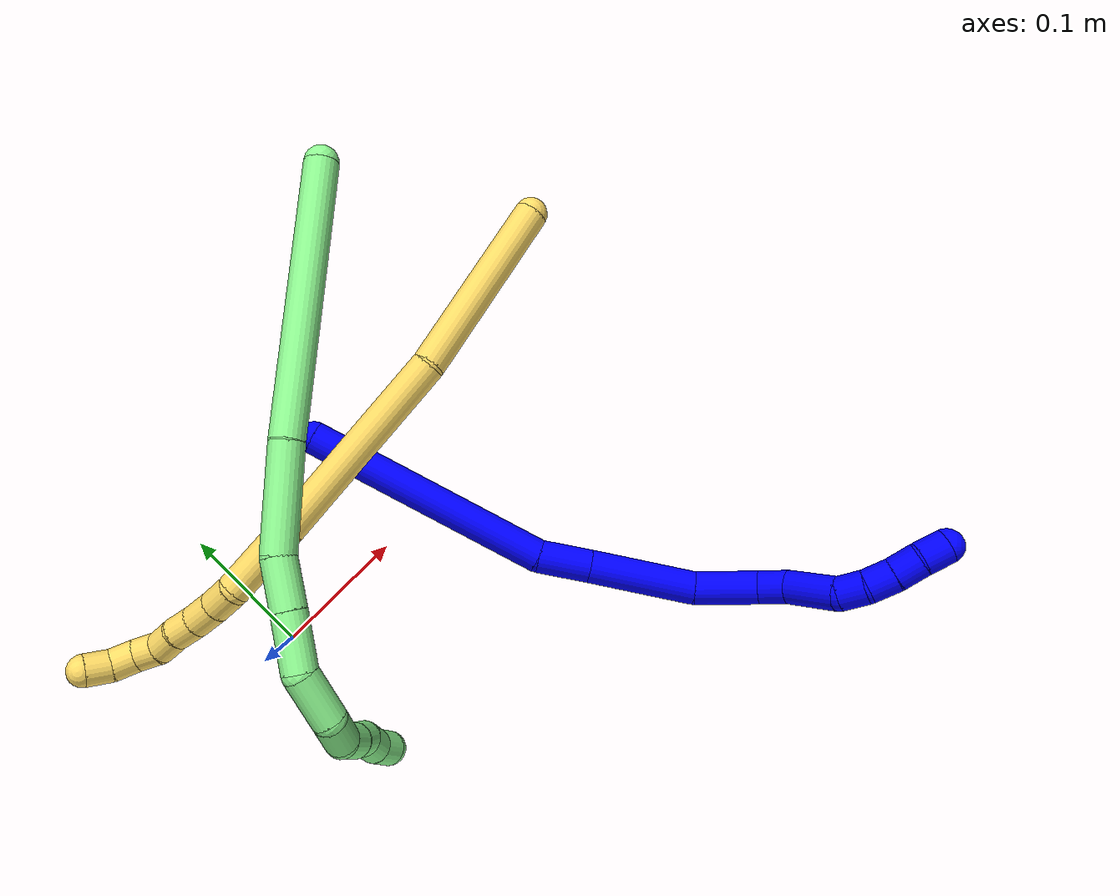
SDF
<sdf version="1.7">
 <world name="default">
  <model name="1">
   <static>0</static>
   <link name="1">
    <collision name="collision-cylinder-e_1_1_4">
     <pose>0.022887 -0.053199 0.075446 0.614159 0.243023 0.077408</pose>
     <geometry><cylinder><radius>0.0125</radius><length>0.190223</length></cylinder></geometry>
     <surface>
      <friction><ode><mu>1.16</mu><mu2>1.16</mu2><slip1>0</slip1><slip2>0</slip2></ode></friction>
      <contact><ode><kp>1e+06</kp><kd>1</kd><max_vel>0</max_vel><min_depth>0.001</min_depth></ode></contact>
     </surface>
    </collision>
    <visual name="visual-cylinder-e_1_1_4">
     <pose>0.022887 -0.053199 0.075446 0.614159 0.243023 0.077408</pose>
     <geometry><cylinder><radius>0.0125</radius><length>0.190223</length></cylinder></geometry>
     <material><ambient>0 0 1 1</ambient></material>
    </visual>
    <collision name="collision-cylinder-e_2_4_5">
     <pose>0.052797 -0.112438 0.168235 0.335085 0.365246 0.062449</pose>
     <geometry><cylinder><radius>0.0125</radius><length>0.03932</length></cylinder></geometry>
     <surface>
      <friction><ode><mu>1.16</mu><mu2>1.16</mu2><slip1>0</slip1><slip2>0</slip2></ode></friction>
      <contact><ode><kp>1e+06</kp><kd>1</kd><max_vel>0</max_vel><min_depth>0.001</min_depth></ode></contact>
     </surface>
    </collision>
    <visual name="visual-cylinder-e_2_4_5">
     <pose>0.052797 -0.112438 0.168235 0.335085 0.365246 0.062449</pose>
     <geometry><cylinder><radius>0.0125</radius><length>0.03932</length></cylinder></geometry>
     <material><ambient>0 0 1 1</ambient></material>
    </visual>
    <collision name="collision-cylinder-e_3_5_6">
     <pose>0.073649 -0.131169 0.220781 0.346038 0.353983 0.062498</pose>
     <geometry><cylinder><radius>0.0125</radius><length>0.079793</length></cylinder></geometry>
     <surface>
      <friction><ode><mu>1.16</mu><mu2>1.16</mu2><slip1>0</slip1><slip2>0</slip2></ode></friction>
      <contact><ode><kp>1e+06</kp><kd>1</kd><max_vel>0</max_vel><min_depth>0.001</min_depth></ode></contact>
     </surface>
    </collision>
    <visual name="visual-cylinder-e_3_5_6">
     <pose>0.073649 -0.131169 0.220781 0.346038 0.353983 0.062498</pose>
     <geometry><cylinder><radius>0.0125</radius><length>0.079793</length></cylinder></geometry>
     <material><ambient>0 0 1 1</ambient></material>
    </visual>
    <collision name="collision-cylinder-e_4_6_7">
     <pose>0.094185 -0.14523 0.278897 0.059623 0.284286 0.008535</pose>
     <geometry><cylinder><radius>0.0125</radius><length>0.047824</length></cylinder></geometry>
     <surface>
      <friction><ode><mu>1.16</mu><mu2>1.16</mu2><slip1>0</slip1><slip2>0</slip2></ode></friction>
      <contact><ode><kp>1e+06</kp><kd>1</kd><max_vel>0</max_vel><min_depth>0.001</min_depth></ode></contact>
     </surface>
    </collision>
    <visual name="visual-cylinder-e_4_6_7">
     <pose>0.094185 -0.14523 0.278897 0.059623 0.284286 0.008535</pose>
     <geometry><cylinder><radius>0.0125</radius><length>0.047824</length></cylinder></geometry>
     <material><ambient>0 0 1 1</ambient></material>
    </visual>
    <collision name="collision-cylinder-e_5_7_8">
     <pose>0.100456 -0.145637 0.312975 -0.085765 -0.038829 0.001666</pose>
     <geometry><cylinder><radius>0.0125</radius><length>0.02243</length></cylinder></geometry>
     <surface>
      <friction><ode><mu>1.16</mu><mu2>1.16</mu2><slip1>0</slip1><slip2>0</slip2></ode></friction>
      <contact><ode><kp>1e+06</kp><kd>1</kd><max_vel>0</max_vel><min_depth>0.001</min_depth></ode></contact>
     </surface>
    </collision>
    <visual name="visual-cylinder-e_5_7_8">
     <pose>0.100456 -0.145637 0.312975 -0.085765 -0.038829 0.001666</pose>
     <geometry><cylinder><radius>0.0125</radius><length>0.02243</length></cylinder></geometry>
     <material><ambient>0 0 1 1</ambient></material>
    </visual>
    <collision name="collision-cylinder-e_6_8_9">
     <pose>0.093821 -0.143916 0.342861 -0.04064 -0.319552 0.00655</pose>
     <geometry><cylinder><radius>0.0125</radius><length>0.03947</length></cylinder></geometry>
     <surface>
      <friction><ode><mu>1.16</mu><mu2>1.16</mu2><slip1>0</slip1><slip2>0</slip2></ode></friction>
      <contact><ode><kp>1e+06</kp><kd>1</kd><max_vel>0</max_vel><min_depth>0.001</min_depth></ode></contact>
     </surface>
    </collision>
    <visual name="visual-cylinder-e_6_8_9">
     <pose>0.093821 -0.143916 0.342861 -0.04064 -0.319552 0.00655</pose>
     <geometry><cylinder><radius>0.0125</radius><length>0.03947</length></cylinder></geometry>
     <material><ambient>0 0 1 1</ambient></material>
    </visual>
    <collision name="collision-cylinder-e_7_9_10">
     <pose>0.088557 -0.140317 0.371202 -0.286884 0.092935 -0.013432</pose>
     <geometry><cylinder><radius>0.0125</radius><length>0.020148</length></cylinder></geometry>
     <surface>
      <friction><ode><mu>1.16</mu><mu2>1.16</mu2><slip1>0</slip1><slip2>0</slip2></ode></friction>
      <contact><ode><kp>1e+06</kp><kd>1</kd><max_vel>0</max_vel><min_depth>0.001</min_depth></ode></contact>
     </surface>
    </collision>
    <visual name="visual-cylinder-e_7_9_10">
     <pose>0.088557 -0.140317 0.371202 -0.286884 0.092935 -0.013432</pose>
     <geometry><cylinder><radius>0.0125</radius><length>0.020148</length></cylinder></geometry>
     <material><ambient>0 0 1 1</ambient></material>
    </visual>
    <collision name="collision-cylinder-e_8_10_11">
     <pose>0.092647 -0.133839 0.389749 -0.387152 0.316293 -0.062505</pose>
     <geometry><cylinder><radius>0.0125</radius><length>0.020286</length></cylinder></geometry>
     <surface>
      <friction><ode><mu>1.16</mu><mu2>1.16</mu2><slip1>0</slip1><slip2>0</slip2></ode></friction>
      <contact><ode><kp>1e+06</kp><kd>1</kd><max_vel>0</max_vel><min_depth>0.001</min_depth></ode></contact>
     </surface>
    </collision>
    <visual name="visual-cylinder-e_8_10_11">
     <pose>0.092647 -0.133839 0.389749 -0.387152 0.316293 -0.062505</pose>
     <geometry><cylinder><radius>0.0125</radius><length>0.020286</length></cylinder></geometry>
     <material><ambient>0 0 1 1</ambient></material>
    </visual>
    <collision name="collision-cylinder-e_9_11_12">
     <pose>0.099003 -0.125431 0.407019 -0.519155 0.321632 -0.086106</pose>
     <geometry><cylinder><radius>0.0125</radius><length>0.020258</length></cylinder></geometry>
     <surface>
      <friction><ode><mu>1.16</mu><mu2>1.16</mu2><slip1>0</slip1><slip2>0</slip2></ode></friction>
      <contact><ode><kp>1e+06</kp><kd>1</kd><max_vel>0</max_vel><min_depth>0.001</min_depth></ode></contact>
     </surface>
    </collision>
    <visual name="visual-cylinder-e_9_11_12">
     <pose>0.099003 -0.125431 0.407019 -0.519155 0.321632 -0.086106</pose>
     <geometry><cylinder><radius>0.0125</radius><length>0.020258</length></cylinder></geometry>
     <material><ambient>0 0 1 1</ambient></material>
    </visual>
    <collision name="collision-cylinder-e_10_12_2">
     <pose>0.106707 -0.117044 0.423676 -0.410609 0.46085 -0.097624</pose>
     <geometry><cylinder><radius>0.0125</radius><length>0.020247</length></cylinder></geometry>
     <surface>
      <friction><ode><mu>1.16</mu><mu2>1.16</mu2><slip1>0</slip1><slip2>0</slip2></ode></friction>
      <contact><ode><kp>1e+06</kp><kd>1</kd><max_vel>0</max_vel><min_depth>0.001</min_depth></ode></contact>
     </surface>
    </collision>
    <visual name="visual-cylinder-e_10_12_2">
     <pose>0.106707 -0.117044 0.423676 -0.410609 0.46085 -0.097624</pose>
     <geometry><cylinder><radius>0.0125</radius><length>0.020247</length></cylinder></geometry>
     <material><ambient>0 0 1 1</ambient></material>
    </visual>
    <collision name="collision-sphere-2">
     <pose>0.111209 -0.113425 0.43199 0 -0 0</pose>
     <geometry><sphere><radius>0.0125</radius></sphere></geometry>
     <surface>
      <friction><ode><mu>1.16</mu><mu2>1.16</mu2><slip1>0</slip1><slip2>0</slip2></ode></friction>
      <contact><ode><kp>1e+06</kp><kd>1</kd><max_vel>0</max_vel><min_depth>0.001</min_depth></ode></contact>
     </surface>
    </collision>
    <visual name="visual-sphere-2">
     <pose>0.111209 -0.113425 0.43199 0 -0 0</pose>
     <geometry><sphere><radius>0.0125</radius></sphere></geometry>
     <material><ambient>0 0 1 1</ambient></material>
    </visual>
    <collision name="collision-sphere-12">
     <pose>0.102205 -0.120664 0.415362 0 -0 0</pose>
     <geometry><sphere><radius>0.0125</radius></sphere></geometry>
     <surface>
      <friction><ode><mu>1.16</mu><mu2>1.16</mu2><slip1>0</slip1><slip2>0</slip2></ode></friction>
      <contact><ode><kp>1e+06</kp><kd>1</kd><max_vel>0</max_vel><min_depth>0.001</min_depth></ode></contact>
     </surface>
    </collision>
    <visual name="visual-sphere-12">
     <pose>0.102205 -0.120664 0.415362 0 -0 0</pose>
     <geometry><sphere><radius>0.0125</radius></sphere></geometry>
     <material><ambient>0 0 1 1</ambient></material>
    </visual>
    <collision name="collision-sphere-11">
     <pose>0.095802 -0.130199 0.398676 0 -0 0</pose>
     <geometry><sphere><radius>0.0125</radius></sphere></geometry>
     <surface>
      <friction><ode><mu>1.16</mu><mu2>1.16</mu2><slip1>0</slip1><slip2>0</slip2></ode></friction>
      <contact><ode><kp>1e+06</kp><kd>1</kd><max_vel>0</max_vel><min_depth>0.001</min_depth></ode></contact>
     </surface>
    </collision>
    <visual name="visual-sphere-11">
     <pose>0.095802 -0.130199 0.398676 0 -0 0</pose>
     <geometry><sphere><radius>0.0125</radius></sphere></geometry>
     <material><ambient>0 0 1 1</ambient></material>
    </visual>
    <collision name="collision-sphere-10">
     <pose>0.089492 -0.137478 0.380823 0 -0 0</pose>
     <geometry><sphere><radius>0.0125</radius></sphere></geometry>
     <surface>
      <friction><ode><mu>1.16</mu><mu2>1.16</mu2><slip1>0</slip1><slip2>0</slip2></ode></friction>
      <contact><ode><kp>1e+06</kp><kd>1</kd><max_vel>0</max_vel><min_depth>0.001</min_depth></ode></contact>
     </surface>
    </collision>
    <visual name="visual-sphere-10">
     <pose>0.089492 -0.137478 0.380823 0 -0 0</pose>
     <geometry><sphere><radius>0.0125</radius></sphere></geometry>
     <material><ambient>0 0 1 1</ambient></material>
    </visual>
    <collision name="collision-sphere-9">
     <pose>0.087622 -0.143155 0.361581 0 -0 0</pose>
     <geometry><sphere><radius>0.0125</radius></sphere></geometry>
     <surface>
      <friction><ode><mu>1.16</mu><mu2>1.16</mu2><slip1>0</slip1><slip2>0</slip2></ode></friction>
      <contact><ode><kp>1e+06</kp><kd>1</kd><max_vel>0</max_vel><min_depth>0.001</min_depth></ode></contact>
     </surface>
    </collision>
    <visual name="visual-sphere-9">
     <pose>0.087622 -0.143155 0.361581 0 -0 0</pose>
     <geometry><sphere><radius>0.0125</radius></sphere></geometry>
     <material><ambient>0 0 1 1</ambient></material>
    </visual>
    <collision name="collision-sphere-4">
     <pose>0.045775 -0.106399 0.150893 0 -0 0</pose>
     <geometry><sphere><radius>0.0125</radius></sphere></geometry>
     <surface>
      <friction><ode><mu>1.16</mu><mu2>1.16</mu2><slip1>0</slip1><slip2>0</slip2></ode></friction>
      <contact><ode><kp>1e+06</kp><kd>1</kd><max_vel>0</max_vel><min_depth>0.001</min_depth></ode></contact>
     </surface>
    </collision>
    <visual name="visual-sphere-4">
     <pose>0.045775 -0.106399 0.150893 0 -0 0</pose>
     <geometry><sphere><radius>0.0125</radius></sphere></geometry>
     <material><ambient>0 0 1 1</ambient></material>
    </visual>
    <collision name="collision-sphere-1">
     <geometry><sphere><radius>0.0125</radius></sphere></geometry>
     <surface>
      <friction><ode><mu>1.16</mu><mu2>1.16</mu2><slip1>0</slip1><slip2>0</slip2></ode></friction>
      <contact><ode><kp>1e+06</kp><kd>1</kd><max_vel>0</max_vel><min_depth>0.001</min_depth></ode></contact>
     </surface>
    </collision>
    <visual name="visual-sphere-1">
     <geometry><sphere><radius>0.0125</radius></sphere></geometry>
     <material><ambient>0 0 1 1</ambient></material>
    </visual>
    <collision name="collision-sphere-8">
     <pose>0.100021 -0.144677 0.32414 0 -0 0</pose>
     <geometry><sphere><radius>0.0125</radius></sphere></geometry>
     <surface>
      <friction><ode><mu>1.16</mu><mu2>1.16</mu2><slip1>0</slip1><slip2>0</slip2></ode></friction>
      <contact><ode><kp>1e+06</kp><kd>1</kd><max_vel>0</max_vel><min_depth>0.001</min_depth></ode></contact>
     </surface>
    </collision>
    <visual name="visual-sphere-8">
     <pose>0.100021 -0.144677 0.32414 0 -0 0</pose>
     <geometry><sphere><radius>0.0125</radius></sphere></geometry>
     <material><ambient>0 0 1 1</ambient></material>
    </visual>
    <collision name="collision-sphere-5">
     <pose>0.059819 -0.118476 0.185577 0 -0 0</pose>
     <geometry><sphere><radius>0.0125</radius></sphere></geometry>
     <surface>
      <friction><ode><mu>1.16</mu><mu2>1.16</mu2><slip1>0</slip1><slip2>0</slip2></ode></friction>
      <contact><ode><kp>1e+06</kp><kd>1</kd><max_vel>0</max_vel><min_depth>0.001</min_depth></ode></contact>
     </surface>
    </collision>
    <visual name="visual-sphere-5">
     <pose>0.059819 -0.118476 0.185577 0 -0 0</pose>
     <geometry><sphere><radius>0.0125</radius></sphere></geometry>
     <material><ambient>0 0 1 1</ambient></material>
    </visual>
    <collision name="collision-sphere-6">
     <pose>0.087478 -0.143862 0.255986 0 -0 0</pose>
     <geometry><sphere><radius>0.0125</radius></sphere></geometry>
     <surface>
      <friction><ode><mu>1.16</mu><mu2>1.16</mu2><slip1>0</slip1><slip2>0</slip2></ode></friction>
      <contact><ode><kp>1e+06</kp><kd>1</kd><max_vel>0</max_vel><min_depth>0.001</min_depth></ode></contact>
     </surface>
    </collision>
    <visual name="visual-sphere-6">
     <pose>0.087478 -0.143862 0.255986 0 -0 0</pose>
     <geometry><sphere><radius>0.0125</radius></sphere></geometry>
     <material><ambient>0 0 1 1</ambient></material>
    </visual>
    <collision name="collision-sphere-7">
     <pose>0.100892 -0.146597 0.301809 0 -0 0</pose>
     <geometry><sphere><radius>0.0125</radius></sphere></geometry>
     <surface>
      <friction><ode><mu>1.16</mu><mu2>1.16</mu2><slip1>0</slip1><slip2>0</slip2></ode></friction>
      <contact><ode><kp>1e+06</kp><kd>1</kd><max_vel>0</max_vel><min_depth>0.001</min_depth></ode></contact>
     </surface>
    </collision>
    <visual name="visual-sphere-7">
     <pose>0.100892 -0.146597 0.301809 0 -0 0</pose>
     <geometry><sphere><radius>0.0125</radius></sphere></geometry>
     <material><ambient>0 0 1 1</ambient></material>
    </visual>
    <inertial>
     <pose>0.061194 -0.102705 0.209367 0 -0 0</pose>
     <mass>0.5</mass>
     <inertia>
      <ixx>0.00069</ixx>
      <ixy>0</ixy>
      <ixz>0</ixz>
      <iyy>0.000591</iyy>
      <iyz>0</iyz>
      <izz>0.000213</izz>
     </inertia>
    </inertial>
   </link>
   <pose>0.119695 0.096034 0.013007 0.530638 1.04086 -0.17504</pose>
  </model>
  <model name="5">
   <static>0</static>
   <link name="5">
    <collision name="collision-cylinder-e_1_1_4">
     <pose>-0.058911 0.038456 -0.009829 -1.82103 -0.97789 1.20134</pose>
     <geometry><cylinder><radius>0.0125</radius><length>0.14207</length></cylinder></geometry>
     <surface>
      <friction><ode><mu>1.16</mu><mu2>1.16</mu2><slip1>0</slip1><slip2>0</slip2></ode></friction>
      <contact><ode><kp>1e+06</kp><kd>1</kd><max_vel>0</max_vel><min_depth>0.001</min_depth></ode></contact>
     </surface>
    </collision>
    <visual name="visual-cylinder-e_1_1_4">
     <pose>-0.058911 0.038456 -0.009829 -1.82103 -0.97789 1.20134</pose>
     <geometry><cylinder><radius>0.0125</radius><length>0.14207</length></cylinder></geometry>
     <material><ambient>1 0.858824 0.4 1</ambient></material>
    </visual>
    <collision name="collision-cylinder-e_2_4_5">
     <pose>-0.187436 0.109822 -0.01701 -1.4905 -1.12795 1.05663</pose>
     <geometry><cylinder><radius>0.0125</radius><length>0.154094</length></cylinder></geometry>
     <surface>
      <friction><ode><mu>1.16</mu><mu2>1.16</mu2><slip1>0</slip1><slip2>0</slip2></ode></friction>
      <contact><ode><kp>1e+06</kp><kd>1</kd><max_vel>0</max_vel><min_depth>0.001</min_depth></ode></contact>
     </surface>
    </collision>
    <visual name="visual-cylinder-e_2_4_5">
     <pose>-0.187436 0.109822 -0.01701 -1.4905 -1.12795 1.05663</pose>
     <geometry><cylinder><radius>0.0125</radius><length>0.154094</length></cylinder></geometry>
     <material><ambient>1 0.858824 0.4 1</ambient></material>
    </visual>
    <collision name="collision-cylinder-e_3_5_6">
     <pose>-0.284372 0.154466 -0.01057 -1.25823 -1.14677 0.878647</pose>
     <geometry><cylinder><radius>0.0125</radius><length>0.05995</length></cylinder></geometry>
     <surface>
      <friction><ode><mu>1.16</mu><mu2>1.16</mu2><slip1>0</slip1><slip2>0</slip2></ode></friction>
      <contact><ode><kp>1e+06</kp><kd>1</kd><max_vel>0</max_vel><min_depth>0.001</min_depth></ode></contact>
     </surface>
    </collision>
    <visual name="visual-cylinder-e_3_5_6">
     <pose>-0.284372 0.154466 -0.01057 -1.25823 -1.14677 0.878647</pose>
     <geometry><cylinder><radius>0.0125</radius><length>0.05995</length></cylinder></geometry>
     <material><ambient>1 0.858824 0.4 1</ambient></material>
    </visual>
    <collision name="collision-cylinder-e_4_6_7">
     <pose>-0.321082 0.168472 -0.001491 -0.405739 -1.02098 0.229372</pose>
     <geometry><cylinder><radius>0.0125</radius><length>0.022025</length></cylinder></geometry>
     <surface>
      <friction><ode><mu>1.16</mu><mu2>1.16</mu2><slip1>0</slip1><slip2>0</slip2></ode></friction>
      <contact><ode><kp>1e+06</kp><kd>1</kd><max_vel>0</max_vel><min_depth>0.001</min_depth></ode></contact>
     </surface>
    </collision>
    <visual name="visual-cylinder-e_4_6_7">
     <pose>-0.321082 0.168472 -0.001491 -0.405739 -1.02098 0.229372</pose>
     <geometry><cylinder><radius>0.0125</radius><length>0.022025</length></cylinder></geometry>
     <material><ambient>1 0.858824 0.4 1</ambient></material>
    </visual>
    <collision name="collision-cylinder-e_5_7_8">
     <pose>-0.340195 0.172522 0.008419 -0.36716 -1.09969 0.226617</pose>
     <geometry><cylinder><radius>0.0125</radius><length>0.021825</length></cylinder></geometry>
     <surface>
      <friction><ode><mu>1.16</mu><mu2>1.16</mu2><slip1>0</slip1><slip2>0</slip2></ode></friction>
      <contact><ode><kp>1e+06</kp><kd>1</kd><max_vel>0</max_vel><min_depth>0.001</min_depth></ode></contact>
     </surface>
    </collision>
    <visual name="visual-cylinder-e_5_7_8">
     <pose>-0.340195 0.172522 0.008419 -0.36716 -1.09969 0.226617</pose>
     <geometry><cylinder><radius>0.0125</radius><length>0.021825</length></cylinder></geometry>
     <material><ambient>1 0.858824 0.4 1</ambient></material>
    </visual>
    <collision name="collision-cylinder-e_6_8_9">
     <pose>-0.359198 0.175328 0.016665 -0.27654 -1.18527 0.186867</pose>
     <geometry><cylinder><radius>0.0125</radius><length>0.02003</length></cylinder></geometry>
     <surface>
      <friction><ode><mu>1.16</mu><mu2>1.16</mu2><slip1>0</slip1><slip2>0</slip2></ode></friction>
      <contact><ode><kp>1e+06</kp><kd>1</kd><max_vel>0</max_vel><min_depth>0.001</min_depth></ode></contact>
     </surface>
    </collision>
    <visual name="visual-cylinder-e_6_8_9">
     <pose>-0.359198 0.175328 0.016665 -0.27654 -1.18527 0.186867</pose>
     <geometry><cylinder><radius>0.0125</radius><length>0.02003</length></cylinder></geometry>
     <material><ambient>1 0.858824 0.4 1</ambient></material>
    </visual>
    <collision name="collision-cylinder-e_7_9_10">
     <pose>-0.377065 0.178304 0.02503 -0.389757 -1.03258 0.223158</pose>
     <geometry><cylinder><radius>0.0125</radius><length>0.02</length></cylinder></geometry>
     <surface>
      <friction><ode><mu>1.16</mu><mu2>1.16</mu2><slip1>0</slip1><slip2>0</slip2></ode></friction>
      <contact><ode><kp>1e+06</kp><kd>1</kd><max_vel>0</max_vel><min_depth>0.001</min_depth></ode></contact>
     </surface>
    </collision>
    <visual name="visual-cylinder-e_7_9_10">
     <pose>-0.377065 0.178304 0.02503 -0.389757 -1.03258 0.223158</pose>
     <geometry><cylinder><radius>0.0125</radius><length>0.02</length></cylinder></geometry>
     <material><ambient>1 0.858824 0.4 1</ambient></material>
    </visual>
    <collision name="collision-cylinder-e_8_10_11">
     <pose>-0.395131 0.179085 0.032742 0.374117 -1.24602 -0.270312</pose>
     <geometry><cylinder><radius>0.0125</radius><length>0.020004</length></cylinder></geometry>
     <surface>
      <friction><ode><mu>1.16</mu><mu2>1.16</mu2><slip1>0</slip1><slip2>0</slip2></ode></friction>
      <contact><ode><kp>1e+06</kp><kd>1</kd><max_vel>0</max_vel><min_depth>0.001</min_depth></ode></contact>
     </surface>
    </collision>
    <visual name="visual-cylinder-e_8_10_11">
     <pose>-0.395131 0.179085 0.032742 0.374117 -1.24602 -0.270312</pose>
     <geometry><cylinder><radius>0.0125</radius><length>0.020004</length></cylinder></geometry>
     <material><ambient>1 0.858824 0.4 1</ambient></material>
    </visual>
    <collision name="collision-cylinder-e_9_11_12">
     <pose>-0.414393 0.177582 0.033669 2.9783 -1.36217 -2.94035</pose>
     <geometry><cylinder><radius>0.0125</radius><length>0.020001</length></cylinder></geometry>
     <surface>
      <friction><ode><mu>1.16</mu><mu2>1.16</mu2><slip1>0</slip1><slip2>0</slip2></ode></friction>
      <contact><ode><kp>1e+06</kp><kd>1</kd><max_vel>0</max_vel><min_depth>0.001</min_depth></ode></contact>
     </surface>
    </collision>
    <visual name="visual-cylinder-e_9_11_12">
     <pose>-0.414393 0.177582 0.033669 2.9783 -1.36217 -2.94035</pose>
     <geometry><cylinder><radius>0.0125</radius><length>0.020001</length></cylinder></geometry>
     <material><ambient>1 0.858824 0.4 1</ambient></material>
    </visual>
    <collision name="collision-cylinder-e_10_12_2">
     <pose>-0.432935 0.174888 0.027414 2.63124 -1.06711 -2.30988</pose>
     <geometry><cylinder><radius>0.0125</radius><length>0.02</length></cylinder></geometry>
     <surface>
      <friction><ode><mu>1.16</mu><mu2>1.16</mu2><slip1>0</slip1><slip2>0</slip2></ode></friction>
      <contact><ode><kp>1e+06</kp><kd>1</kd><max_vel>0</max_vel><min_depth>0.001</min_depth></ode></contact>
     </surface>
    </collision>
    <visual name="visual-cylinder-e_10_12_2">
     <pose>-0.432935 0.174888 0.027414 2.63124 -1.06711 -2.30988</pose>
     <geometry><cylinder><radius>0.0125</radius><length>0.02</length></cylinder></geometry>
     <material><ambient>1 0.858824 0.4 1</ambient></material>
    </visual>
    <collision name="collision-sphere-2">
     <pose>-0.441693 0.17253 0.023203 0 -0 0</pose>
     <geometry><sphere><radius>0.0125</radius></sphere></geometry>
     <surface>
      <friction><ode><mu>1.16</mu><mu2>1.16</mu2><slip1>0</slip1><slip2>0</slip2></ode></friction>
      <contact><ode><kp>1e+06</kp><kd>1</kd><max_vel>0</max_vel><min_depth>0.001</min_depth></ode></contact>
     </surface>
    </collision>
    <visual name="visual-sphere-2">
     <pose>-0.441693 0.17253 0.023203 0 -0 0</pose>
     <geometry><sphere><radius>0.0125</radius></sphere></geometry>
     <material><ambient>1 0.858824 0.4 1</ambient></material>
    </visual>
    <collision name="collision-sphere-12">
     <pose>-0.424177 0.177245 0.031626 0 -0 0</pose>
     <geometry><sphere><radius>0.0125</radius></sphere></geometry>
     <surface>
      <friction><ode><mu>1.16</mu><mu2>1.16</mu2><slip1>0</slip1><slip2>0</slip2></ode></friction>
      <contact><ode><kp>1e+06</kp><kd>1</kd><max_vel>0</max_vel><min_depth>0.001</min_depth></ode></contact>
     </surface>
    </collision>
    <visual name="visual-sphere-12">
     <pose>-0.424177 0.177245 0.031626 0 -0 0</pose>
     <geometry><sphere><radius>0.0125</radius></sphere></geometry>
     <material><ambient>1 0.858824 0.4 1</ambient></material>
    </visual>
    <collision name="collision-sphere-11">
     <pose>-0.40461 0.177919 0.035713 0 -0 0</pose>
     <geometry><sphere><radius>0.0125</radius></sphere></geometry>
     <surface>
      <friction><ode><mu>1.16</mu><mu2>1.16</mu2><slip1>0</slip1><slip2>0</slip2></ode></friction>
      <contact><ode><kp>1e+06</kp><kd>1</kd><max_vel>0</max_vel><min_depth>0.001</min_depth></ode></contact>
     </surface>
    </collision>
    <visual name="visual-sphere-11">
     <pose>-0.40461 0.177919 0.035713 0 -0 0</pose>
     <geometry><sphere><radius>0.0125</radius></sphere></geometry>
     <material><ambient>1 0.858824 0.4 1</ambient></material>
    </visual>
    <collision name="collision-sphere-10">
     <pose>-0.385651 0.180251 0.029771 0 -0 0</pose>
     <geometry><sphere><radius>0.0125</radius></sphere></geometry>
     <surface>
      <friction><ode><mu>1.16</mu><mu2>1.16</mu2><slip1>0</slip1><slip2>0</slip2></ode></friction>
      <contact><ode><kp>1e+06</kp><kd>1</kd><max_vel>0</max_vel><min_depth>0.001</min_depth></ode></contact>
     </surface>
    </collision>
    <visual name="visual-sphere-10">
     <pose>-0.385651 0.180251 0.029771 0 -0 0</pose>
     <geometry><sphere><radius>0.0125</radius></sphere></geometry>
     <material><ambient>1 0.858824 0.4 1</ambient></material>
    </visual>
    <collision name="collision-sphere-9">
     <pose>-0.368478 0.176356 0.020288 0 -0 0</pose>
     <geometry><sphere><radius>0.0125</radius></sphere></geometry>
     <surface>
      <friction><ode><mu>1.16</mu><mu2>1.16</mu2><slip1>0</slip1><slip2>0</slip2></ode></friction>
      <contact><ode><kp>1e+06</kp><kd>1</kd><max_vel>0</max_vel><min_depth>0.001</min_depth></ode></contact>
     </surface>
    </collision>
    <visual name="visual-sphere-9">
     <pose>-0.368478 0.176356 0.020288 0 -0 0</pose>
     <geometry><sphere><radius>0.0125</radius></sphere></geometry>
     <material><ambient>1 0.858824 0.4 1</ambient></material>
    </visual>
    <collision name="collision-sphere-4">
     <pose>-0.117822 0.076913 -0.019658 0 -0 0</pose>
     <geometry><sphere><radius>0.0125</radius></sphere></geometry>
     <surface>
      <friction><ode><mu>1.16</mu><mu2>1.16</mu2><slip1>0</slip1><slip2>0</slip2></ode></friction>
      <contact><ode><kp>1e+06</kp><kd>1</kd><max_vel>0</max_vel><min_depth>0.001</min_depth></ode></contact>
     </surface>
    </collision>
    <visual name="visual-sphere-4">
     <pose>-0.117822 0.076913 -0.019658 0 -0 0</pose>
     <geometry><sphere><radius>0.0125</radius></sphere></geometry>
     <material><ambient>1 0.858824 0.4 1</ambient></material>
    </visual>
    <collision name="collision-sphere-1">
     <geometry><sphere><radius>0.0125</radius></sphere></geometry>
     <surface>
      <friction><ode><mu>1.16</mu><mu2>1.16</mu2><slip1>0</slip1><slip2>0</slip2></ode></friction>
      <contact><ode><kp>1e+06</kp><kd>1</kd><max_vel>0</max_vel><min_depth>0.001</min_depth></ode></contact>
     </surface>
    </collision>
    <visual name="visual-sphere-1">
     <geometry><sphere><radius>0.0125</radius></sphere></geometry>
     <material><ambient>1 0.858824 0.4 1</ambient></material>
    </visual>
    <collision name="collision-sphere-8">
     <pose>-0.349918 0.174299 0.013042 0 -0 0</pose>
     <geometry><sphere><radius>0.0125</radius></sphere></geometry>
     <surface>
      <friction><ode><mu>1.16</mu><mu2>1.16</mu2><slip1>0</slip1><slip2>0</slip2></ode></friction>
      <contact><ode><kp>1e+06</kp><kd>1</kd><max_vel>0</max_vel><min_depth>0.001</min_depth></ode></contact>
     </surface>
    </collision>
    <visual name="visual-sphere-8">
     <pose>-0.349918 0.174299 0.013042 0 -0 0</pose>
     <geometry><sphere><radius>0.0125</radius></sphere></geometry>
     <material><ambient>1 0.858824 0.4 1</ambient></material>
    </visual>
    <collision name="collision-sphere-5">
     <pose>-0.257051 0.142731 -0.014362 0 -0 0</pose>
     <geometry><sphere><radius>0.0125</radius></sphere></geometry>
     <surface>
      <friction><ode><mu>1.16</mu><mu2>1.16</mu2><slip1>0</slip1><slip2>0</slip2></ode></friction>
      <contact><ode><kp>1e+06</kp><kd>1</kd><max_vel>0</max_vel><min_depth>0.001</min_depth></ode></contact>
     </surface>
    </collision>
    <visual name="visual-sphere-5">
     <pose>-0.257051 0.142731 -0.014362 0 -0 0</pose>
     <geometry><sphere><radius>0.0125</radius></sphere></geometry>
     <material><ambient>1 0.858824 0.4 1</ambient></material>
    </visual>
    <collision name="collision-sphere-6">
     <pose>-0.311692 0.166201 -0.006778 0 -0 0</pose>
     <geometry><sphere><radius>0.0125</radius></sphere></geometry>
     <surface>
      <friction><ode><mu>1.16</mu><mu2>1.16</mu2><slip1>0</slip1><slip2>0</slip2></ode></friction>
      <contact><ode><kp>1e+06</kp><kd>1</kd><max_vel>0</max_vel><min_depth>0.001</min_depth></ode></contact>
     </surface>
    </collision>
    <visual name="visual-sphere-6">
     <pose>-0.311692 0.166201 -0.006778 0 -0 0</pose>
     <geometry><sphere><radius>0.0125</radius></sphere></geometry>
     <material><ambient>1 0.858824 0.4 1</ambient></material>
    </visual>
    <collision name="collision-sphere-7">
     <pose>-0.330471 0.170744 0.003797 0 -0 0</pose>
     <geometry><sphere><radius>0.0125</radius></sphere></geometry>
     <surface>
      <friction><ode><mu>1.16</mu><mu2>1.16</mu2><slip1>0</slip1><slip2>0</slip2></ode></friction>
      <contact><ode><kp>1e+06</kp><kd>1</kd><max_vel>0</max_vel><min_depth>0.001</min_depth></ode></contact>
     </surface>
    </collision>
    <visual name="visual-sphere-7">
     <pose>-0.330471 0.170744 0.003797 0 -0 0</pose>
     <geometry><sphere><radius>0.0125</radius></sphere></geometry>
     <material><ambient>1 0.858824 0.4 1</ambient></material>
    </visual>
    <inertial>
     <pose>-0.216769 0.113665 -0.003579 0 -0 0</pose>
     <mass>0.5</mass>
     <inertia>
      <ixx>0.000338</ixx>
      <ixy>0</ixy>
      <ixz>0</ixz>
      <iyy>0.000709</iyy>
      <iyz>0</iyz>
      <izz>0.00024</izz>
     </inertia>
    </inertial>
   </link>
   <pose>0.353416 0.10285 0.011622 3.06287 0.05522 -0.348373</pose>
  </model>
  <model name="13">
   <static>0</static>
   <link name="13">
    <collision name="collision-cylinder-e_1_1_4">
     <pose>-0.055715 -0.020765 -0.080252 2.8884 -0.591761 -2.35052</pose>
     <geometry><cylinder><radius>0.0125</radius><length>0.199757</length></cylinder></geometry>
     <surface>
      <friction><ode><mu>1.16</mu><mu2>1.16</mu2><slip1>0</slip1><slip2>0</slip2></ode></friction>
      <contact><ode><kp>1e+06</kp><kd>1</kd><max_vel>0</max_vel><min_depth>0.001</min_depth></ode></contact>
     </surface>
    </collision>
    <visual name="visual-cylinder-e_1_1_4">
     <pose>-0.055715 -0.020765 -0.080252 2.8884 -0.591761 -2.35052</pose>
     <geometry><cylinder><radius>0.0125</radius><length>0.199757</length></cylinder></geometry>
     <material><ambient>0.564706 0.984314 0.572549 1</ambient></material>
    </visual>
    <collision name="collision-cylinder-e_2_4_5">
     <pose>-0.132268 -0.053232 -0.189944 2.76328 -0.581836 -2.0038</pose>
     <geometry><cylinder><radius>0.0125</radius><length>0.075839</length></cylinder></geometry>
     <surface>
      <friction><ode><mu>1.16</mu><mu2>1.16</mu2><slip1>0</slip1><slip2>0</slip2></ode></friction>
      <contact><ode><kp>1e+06</kp><kd>1</kd><max_vel>0</max_vel><min_depth>0.001</min_depth></ode></contact>
     </surface>
    </collision>
    <visual name="visual-cylinder-e_2_4_5">
     <pose>-0.132268 -0.053232 -0.189944 2.76328 -0.581836 -2.0038</pose>
     <geometry><cylinder><radius>0.0125</radius><length>0.075839</length></cylinder></geometry>
     <material><ambient>0.564706 0.984314 0.572549 1</ambient></material>
    </visual>
    <collision name="collision-cylinder-e_3_5_6">
     <pose>-0.166143 -0.071233 -0.229969 2.60474 -0.813713 -2.00531</pose>
     <geometry><cylinder><radius>0.0125</radius><length>0.035871</length></cylinder></geometry>
     <surface>
      <friction><ode><mu>1.16</mu><mu2>1.16</mu2><slip1>0</slip1><slip2>0</slip2></ode></friction>
      <contact><ode><kp>1e+06</kp><kd>1</kd><max_vel>0</max_vel><min_depth>0.001</min_depth></ode></contact>
     </surface>
    </collision>
    <visual name="visual-cylinder-e_3_5_6">
     <pose>-0.166143 -0.071233 -0.229969 2.60474 -0.813713 -2.00531</pose>
     <geometry><cylinder><radius>0.0125</radius><length>0.035871</length></cylinder></geometry>
     <material><ambient>0.564706 0.984314 0.572549 1</ambient></material>
    </visual>
    <collision name="collision-cylinder-e_4_6_7">
     <pose>-0.193676 -0.084957 -0.252783 2.59598 -0.792005 -1.96209</pose>
     <geometry><cylinder><radius>0.0125</radius><length>0.040735</length></cylinder></geometry>
     <surface>
      <friction><ode><mu>1.16</mu><mu2>1.16</mu2><slip1>0</slip1><slip2>0</slip2></ode></friction>
      <contact><ode><kp>1e+06</kp><kd>1</kd><max_vel>0</max_vel><min_depth>0.001</min_depth></ode></contact>
     </surface>
    </collision>
    <visual name="visual-cylinder-e_4_6_7">
     <pose>-0.193676 -0.084957 -0.252783 2.59598 -0.792005 -1.96209</pose>
     <geometry><cylinder><radius>0.0125</radius><length>0.040735</length></cylinder></geometry>
     <material><ambient>0.564706 0.984314 0.572549 1</ambient></material>
    </visual>
    <collision name="collision-cylinder-e_5_7_8">
     <pose>-0.221027 -0.106023 -0.269848 1.91145 -0.726221 -0.986866</pose>
     <geometry><cylinder><radius>0.0125</radius><length>0.038714</length></cylinder></geometry>
     <surface>
      <friction><ode><mu>1.16</mu><mu2>1.16</mu2><slip1>0</slip1><slip2>0</slip2></ode></friction>
      <contact><ode><kp>1e+06</kp><kd>1</kd><max_vel>0</max_vel><min_depth>0.001</min_depth></ode></contact>
     </surface>
    </collision>
    <visual name="visual-cylinder-e_5_7_8">
     <pose>-0.221027 -0.106023 -0.269848 1.91145 -0.726221 -0.986866</pose>
     <geometry><cylinder><radius>0.0125</radius><length>0.038714</length></cylinder></geometry>
     <material><ambient>0.564706 0.984314 0.572549 1</ambient></material>
    </visual>
    <collision name="collision-cylinder-e_6_8_9">
     <pose>-0.237017 -0.132498 -0.277398 1.77922 -0.234619 -0.288742</pose>
     <geometry><cylinder><radius>0.0125</radius><length>0.026975</length></cylinder></geometry>
     <surface>
      <friction><ode><mu>1.16</mu><mu2>1.16</mu2><slip1>0</slip1><slip2>0</slip2></ode></friction>
      <contact><ode><kp>1e+06</kp><kd>1</kd><max_vel>0</max_vel><min_depth>0.001</min_depth></ode></contact>
     </surface>
    </collision>
    <visual name="visual-cylinder-e_6_8_9">
     <pose>-0.237017 -0.132498 -0.277398 1.77922 -0.234619 -0.288742</pose>
     <geometry><cylinder><radius>0.0125</radius><length>0.026975</length></cylinder></geometry>
     <material><ambient>0.564706 0.984314 0.572549 1</ambient></material>
    </visual>
    <collision name="collision-cylinder-e_7_9_10">
     <pose>-0.239636 -0.155814 -0.277898 1.36254 0.048139 0.039032</pose>
     <geometry><cylinder><radius>0.0125</radius><length>0.02145</length></cylinder></geometry>
     <surface>
      <friction><ode><mu>1.16</mu><mu2>1.16</mu2><slip1>0</slip1><slip2>0</slip2></ode></friction>
      <contact><ode><kp>1e+06</kp><kd>1</kd><max_vel>0</max_vel><min_depth>0.001</min_depth></ode></contact>
     </surface>
    </collision>
    <visual name="visual-cylinder-e_7_9_10">
     <pose>-0.239636 -0.155814 -0.277898 1.36254 0.048139 0.039032</pose>
     <geometry><cylinder><radius>0.0125</radius><length>0.02145</length></cylinder></geometry>
     <material><ambient>0.564706 0.984314 0.572549 1</ambient></material>
    </visual>
    <collision name="collision-cylinder-e_8_10_11">
     <pose>-0.23754 -0.176057 -0.273409 1.342 0.156337 0.124206</pose>
     <geometry><cylinder><radius>0.0125</radius><length>0.020294</length></cylinder></geometry>
     <surface>
      <friction><ode><mu>1.16</mu><mu2>1.16</mu2><slip1>0</slip1><slip2>0</slip2></ode></friction>
      <contact><ode><kp>1e+06</kp><kd>1</kd><max_vel>0</max_vel><min_depth>0.001</min_depth></ode></contact>
     </surface>
    </collision>
    <visual name="visual-cylinder-e_8_10_11">
     <pose>-0.23754 -0.176057 -0.273409 1.342 0.156337 0.124206</pose>
     <geometry><cylinder><radius>0.0125</radius><length>0.020294</length></cylinder></geometry>
     <material><ambient>0.564706 0.984314 0.572549 1</ambient></material>
    </visual>
    <collision name="collision-cylinder-e_9_11_12">
     <pose>-0.237227 -0.195906 -0.270917 1.54907 -0.124909 -0.122231</pose>
     <geometry><cylinder><radius>0.0125</radius><length>0.020337</length></cylinder></geometry>
     <surface>
      <friction><ode><mu>1.16</mu><mu2>1.16</mu2><slip1>0</slip1><slip2>0</slip2></ode></friction>
      <contact><ode><kp>1e+06</kp><kd>1</kd><max_vel>0</max_vel><min_depth>0.001</min_depth></ode></contact>
     </surface>
    </collision>
    <visual name="visual-cylinder-e_9_11_12">
     <pose>-0.237227 -0.195906 -0.270917 1.54907 -0.124909 -0.122231</pose>
     <geometry><cylinder><radius>0.0125</radius><length>0.020337</length></cylinder></geometry>
     <material><ambient>0.564706 0.984314 0.572549 1</ambient></material>
    </visual>
    <collision name="collision-cylinder-e_10_12_2">
     <pose>-0.239897 -0.215582 -0.268177 1.31374 -0.140593 -0.108484</pose>
     <geometry><cylinder><radius>0.0125</radius><length>0.020028</length></cylinder></geometry>
     <surface>
      <friction><ode><mu>1.16</mu><mu2>1.16</mu2><slip1>0</slip1><slip2>0</slip2></ode></friction>
      <contact><ode><kp>1e+06</kp><kd>1</kd><max_vel>0</max_vel><min_depth>0.001</min_depth></ode></contact>
     </surface>
    </collision>
    <visual name="visual-cylinder-e_10_12_2">
     <pose>-0.239897 -0.215582 -0.268177 1.31374 -0.140593 -0.108484</pose>
     <geometry><cylinder><radius>0.0125</radius><length>0.020028</length></cylinder></geometry>
     <material><ambient>0.564706 0.984314 0.572549 1</ambient></material>
    </visual>
    <collision name="collision-sphere-2">
     <pose>-0.241301 -0.225171 -0.265656 0 -0 0</pose>
     <geometry><sphere><radius>0.0125</radius></sphere></geometry>
     <surface>
      <friction><ode><mu>1.16</mu><mu2>1.16</mu2><slip1>0</slip1><slip2>0</slip2></ode></friction>
      <contact><ode><kp>1e+06</kp><kd>1</kd><max_vel>0</max_vel><min_depth>0.001</min_depth></ode></contact>
     </surface>
    </collision>
    <visual name="visual-sphere-2">
     <pose>-0.241301 -0.225171 -0.265656 0 -0 0</pose>
     <geometry><sphere><radius>0.0125</radius></sphere></geometry>
     <material><ambient>0.564706 0.984314 0.572549 1</ambient></material>
    </visual>
    <collision name="collision-sphere-12">
     <pose>-0.238494 -0.205992 -0.270698 0 -0 0</pose>
     <geometry><sphere><radius>0.0125</radius></sphere></geometry>
     <surface>
      <friction><ode><mu>1.16</mu><mu2>1.16</mu2><slip1>0</slip1><slip2>0</slip2></ode></friction>
      <contact><ode><kp>1e+06</kp><kd>1</kd><max_vel>0</max_vel><min_depth>0.001</min_depth></ode></contact>
     </surface>
    </collision>
    <visual name="visual-sphere-12">
     <pose>-0.238494 -0.205992 -0.270698 0 -0 0</pose>
     <geometry><sphere><radius>0.0125</radius></sphere></geometry>
     <material><ambient>0.564706 0.984314 0.572549 1</ambient></material>
    </visual>
    <collision name="collision-sphere-11">
     <pose>-0.23596 -0.185819 -0.271136 0 -0 0</pose>
     <geometry><sphere><radius>0.0125</radius></sphere></geometry>
     <surface>
      <friction><ode><mu>1.16</mu><mu2>1.16</mu2><slip1>0</slip1><slip2>0</slip2></ode></friction>
      <contact><ode><kp>1e+06</kp><kd>1</kd><max_vel>0</max_vel><min_depth>0.001</min_depth></ode></contact>
     </surface>
    </collision>
    <visual name="visual-sphere-11">
     <pose>-0.23596 -0.185819 -0.271136 0 -0 0</pose>
     <geometry><sphere><radius>0.0125</radius></sphere></geometry>
     <material><ambient>0.564706 0.984314 0.572549 1</ambient></material>
    </visual>
    <collision name="collision-sphere-10">
     <pose>-0.23912 -0.166295 -0.275683 0 -0 0</pose>
     <geometry><sphere><radius>0.0125</radius></sphere></geometry>
     <surface>
      <friction><ode><mu>1.16</mu><mu2>1.16</mu2><slip1>0</slip1><slip2>0</slip2></ode></friction>
      <contact><ode><kp>1e+06</kp><kd>1</kd><max_vel>0</max_vel><min_depth>0.001</min_depth></ode></contact>
     </surface>
    </collision>
    <visual name="visual-sphere-10">
     <pose>-0.23912 -0.166295 -0.275683 0 -0 0</pose>
     <geometry><sphere><radius>0.0125</radius></sphere></geometry>
     <material><ambient>0.564706 0.984314 0.572549 1</ambient></material>
    </visual>
    <collision name="collision-sphere-9">
     <pose>-0.240152 -0.145333 -0.280113 0 -0 0</pose>
     <geometry><sphere><radius>0.0125</radius></sphere></geometry>
     <surface>
      <friction><ode><mu>1.16</mu><mu2>1.16</mu2><slip1>0</slip1><slip2>0</slip2></ode></friction>
      <contact><ode><kp>1e+06</kp><kd>1</kd><max_vel>0</max_vel><min_depth>0.001</min_depth></ode></contact>
     </surface>
    </collision>
    <visual name="visual-sphere-9">
     <pose>-0.240152 -0.145333 -0.280113 0 -0 0</pose>
     <geometry><sphere><radius>0.0125</radius></sphere></geometry>
     <material><ambient>0.564706 0.984314 0.572549 1</ambient></material>
    </visual>
    <collision name="collision-sphere-4">
     <pose>-0.111429 -0.04153 -0.160504 0 -0 0</pose>
     <geometry><sphere><radius>0.0125</radius></sphere></geometry>
     <surface>
      <friction><ode><mu>1.16</mu><mu2>1.16</mu2><slip1>0</slip1><slip2>0</slip2></ode></friction>
      <contact><ode><kp>1e+06</kp><kd>1</kd><max_vel>0</max_vel><min_depth>0.001</min_depth></ode></contact>
     </surface>
    </collision>
    <visual name="visual-sphere-4">
     <pose>-0.111429 -0.04153 -0.160504 0 -0 0</pose>
     <geometry><sphere><radius>0.0125</radius></sphere></geometry>
     <material><ambient>0.564706 0.984314 0.572549 1</ambient></material>
    </visual>
    <collision name="collision-sphere-1">
     <geometry><sphere><radius>0.0125</radius></sphere></geometry>
     <surface>
      <friction><ode><mu>1.16</mu><mu2>1.16</mu2><slip1>0</slip1><slip2>0</slip2></ode></friction>
      <contact><ode><kp>1e+06</kp><kd>1</kd><max_vel>0</max_vel><min_depth>0.001</min_depth></ode></contact>
     </surface>
    </collision>
    <visual name="visual-sphere-1">
     <geometry><sphere><radius>0.0125</radius></sphere></geometry>
     <material><ambient>0.564706 0.984314 0.572549 1</ambient></material>
    </visual>
    <collision name="collision-sphere-8">
     <pose>-0.233881 -0.119664 -0.274684 0 -0 0</pose>
     <geometry><sphere><radius>0.0125</radius></sphere></geometry>
     <surface>
      <friction><ode><mu>1.16</mu><mu2>1.16</mu2><slip1>0</slip1><slip2>0</slip2></ode></friction>
      <contact><ode><kp>1e+06</kp><kd>1</kd><max_vel>0</max_vel><min_depth>0.001</min_depth></ode></contact>
     </surface>
    </collision>
    <visual name="visual-sphere-8">
     <pose>-0.233881 -0.119664 -0.274684 0 -0 0</pose>
     <geometry><sphere><radius>0.0125</radius></sphere></geometry>
     <material><ambient>0.564706 0.984314 0.572549 1</ambient></material>
    </visual>
    <collision name="collision-sphere-5">
     <pose>-0.153107 -0.064933 -0.219384 0 -0 0</pose>
     <geometry><sphere><radius>0.0125</radius></sphere></geometry>
     <surface>
      <friction><ode><mu>1.16</mu><mu2>1.16</mu2><slip1>0</slip1><slip2>0</slip2></ode></friction>
      <contact><ode><kp>1e+06</kp><kd>1</kd><max_vel>0</max_vel><min_depth>0.001</min_depth></ode></contact>
     </surface>
    </collision>
    <visual name="visual-sphere-5">
     <pose>-0.153107 -0.064933 -0.219384 0 -0 0</pose>
     <geometry><sphere><radius>0.0125</radius></sphere></geometry>
     <material><ambient>0.564706 0.984314 0.572549 1</ambient></material>
    </visual>
    <collision name="collision-sphere-6">
     <pose>-0.179179 -0.077533 -0.240554 0 -0 0</pose>
     <geometry><sphere><radius>0.0125</radius></sphere></geometry>
     <surface>
      <friction><ode><mu>1.16</mu><mu2>1.16</mu2><slip1>0</slip1><slip2>0</slip2></ode></friction>
      <contact><ode><kp>1e+06</kp><kd>1</kd><max_vel>0</max_vel><min_depth>0.001</min_depth></ode></contact>
     </surface>
    </collision>
    <visual name="visual-sphere-6">
     <pose>-0.179179 -0.077533 -0.240554 0 -0 0</pose>
     <geometry><sphere><radius>0.0125</radius></sphere></geometry>
     <material><ambient>0.564706 0.984314 0.572549 1</ambient></material>
    </visual>
    <collision name="collision-sphere-7">
     <pose>-0.208173 -0.092381 -0.265013 0 -0 0</pose>
     <geometry><sphere><radius>0.0125</radius></sphere></geometry>
     <surface>
      <friction><ode><mu>1.16</mu><mu2>1.16</mu2><slip1>0</slip1><slip2>0</slip2></ode></friction>
      <contact><ode><kp>1e+06</kp><kd>1</kd><max_vel>0</max_vel><min_depth>0.001</min_depth></ode></contact>
     </surface>
    </collision>
    <visual name="visual-sphere-7">
     <pose>-0.208173 -0.092381 -0.265013 0 -0 0</pose>
     <geometry><sphere><radius>0.0125</radius></sphere></geometry>
     <material><ambient>0.564706 0.984314 0.572549 1</ambient></material>
    </visual>
    <inertial>
     <pose>-0.1391 -0.074193 -0.178605 0 -0 0</pose>
     <mass>0.5</mass>
     <inertia>
      <ixx>-0.000856</ixx>
      <ixy>0</ixy>
      <ixz>0</ixz>
      <iyy>0.000101</iyy>
      <iyz>0</iyz>
      <izz>0.000559</izz>
     </inertia>
    </inertial>
   </link>
   <pose>0.263189 0.221192 0.074404 1.8081 0.412513 1.72974</pose>
  </model>
 </world>
</sdf>
